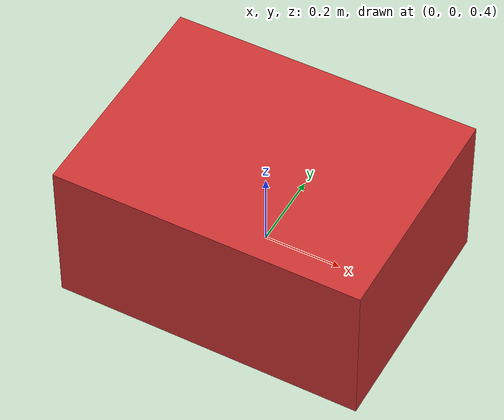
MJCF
<mujoco model="dummy_robot">

  <worldbody>
    <light diffuse=".5 .5 .5" pos="0 0 3" dir="0 0 -1"/>

    <body name="dummy_base" pos="0 0 0.5">
      <joint type="free"/>

      <geom name="box_geom"
            type="box"
            size="0.4 0.3 0.2"
            rgba="0.8 0.2 0.2 1"
            mass="1"/>
    </body>
  </worldbody>

</mujoco>
